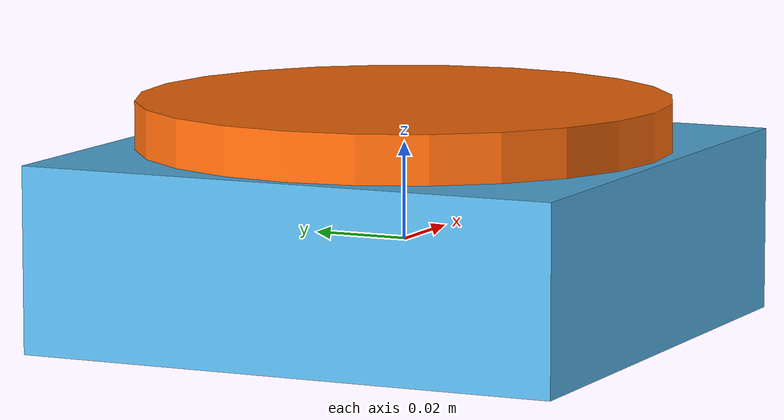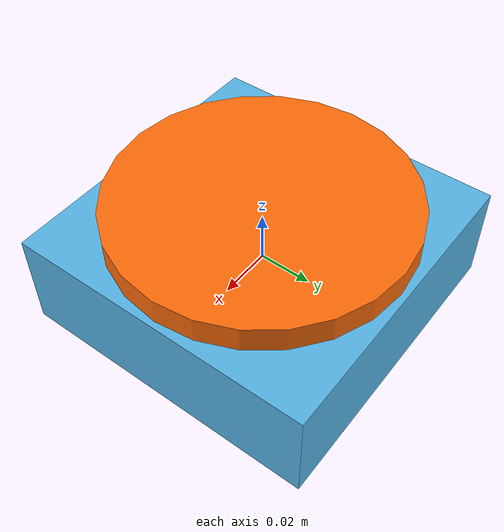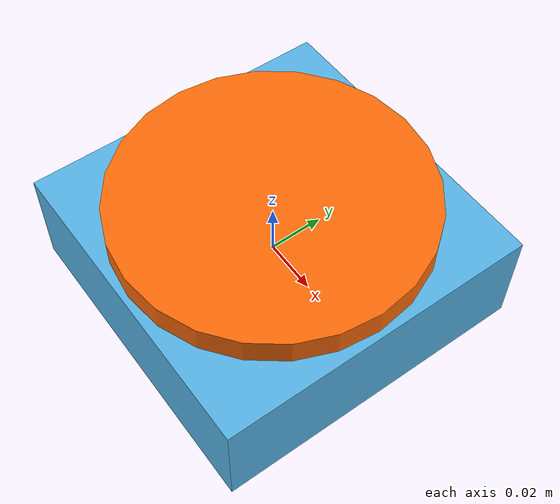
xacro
<?xml version="1.0"?>
<robot name="test" xmlns:xacro="http://ros.org/wiki/xacro">

<xacro:include filename="$(find five_dof_robotarm)/urdf/materials.xacro" />

<!-- Base dimensions -->
<xacro:property name="basex" value="0.1143" />
<xacro:property name="basey" value="0.1143" />
<xacro:property name="basez" value="0.0381" />

<!-- Turntable dimensions -->
<xacro:property name="turntable_height" value="0.01" />
<xacro:property name="turntable_radius" value="0.055" />

<xacro:property name="mass_tt" value="0.05"/> <!--Turntable-->

<!-- Fixing robot to world frame-->
<link name="world"/>
  <joint name="fixed" type="fixed">
    <parent link="world"/>
    <child link="base_link"/>
  </joint>

<link name="base_link">
  <visual>
    <geometry>
      <box size ="${basex} ${basey} ${basez}"/>
    </geometry>
    <origin xyz="0 0 0" rpy="0 0 0"/>
  </visual>
  <collision>
  <geometry>
    <box size ="${basex} ${basey} ${basez}"/>
  </geometry>
</collision>
<inertial>
  <origin xyz="0 0 0" rpy="0 0 0"/>
  <mass value="2"/>
  <inertia ixx="1" ixy="0" ixz="0" iyy="1" iyz="0" izz="1" />
</inertial>
<collision>
  <origin xyz ="0 0 0"/>
  <geometry>
    <box size ="${basex} ${basey} ${basez}"/>
  </geometry>
</collision>
</link>

<joint name="base_to_turntable" type="continuous">
  <parent link="base_link"/>
  <child link="turntable"/>
  <origin xyz="0 0 ${(basez+turntable_height)/2}"/>
  <axis xyz ="0 0 1"/>
</joint>
<link name="turntable">
  <visual>
    <geometry>
      <cylinder radius= "${turntable_radius}" length= "${turntable_height}"/>
    </geometry>
    <origin xyz ="0 0 0"/>
    <material name="orange"/>
  </visual>
  <collision>
    <origin xyz ="0 0 0"/>
    <geometry>
      <cylinder radius= "${turntable_radius}" length= "${turntable_height}"/>
    </geometry>
  </collision>
  <inertial>
     <origin xyz="0 0 0" rpy="0 0 0"/>
     <mass value="${mass_tt}"/>
     <inertia
       ixx="${mass_tt / 12.0 * (3*turntable_radius*turntable_radius + turntable_height*turntable_height)}" ixy="0.0" ixz="0.0"
       iyy="${mass_tt / 12.0 * (3*turntable_radius*turntable_radius + turntable_height*turntable_height)}" iyz="0.0"
       izz="${mass_tt / 12.0 * (turntable_radius*turntable_radius)}"/>
   </inertial>

</link>

</robot>

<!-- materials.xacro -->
<robot>

  <material name="black">
    <color rgba="0.0 0.0 0.0 1.0"/>
  </material>

  <material name="blue">
    <color rgba="0.0 0.0 0.8 1.0"/>
  </material>

  <material name="green">
    <color rgba="0.0 0.8 0.0 1.0"/>
  </material>

  <material name="grey">
    <color rgba="0.2 0.2 0.2 1.0"/>
  </material>

  <material name="orange">
    <color rgba="${255/255} ${108/255} ${10/255} 1.0"/>
  </material>

  <material name="brown">
    <color rgba="${222/255} ${207/255} ${195/255} 1.0"/>
  </material>

  <material name="red">
    <color rgba="0.8 0.0 0.0 1.0"/>
  </material>

  <material name="white">
    <color rgba="1.0 1.0 1.0 1.0"/>
  </material>
  <material name="cyan">
     <color rgba="0 1 1 1"/>
  </material>

</robot>
